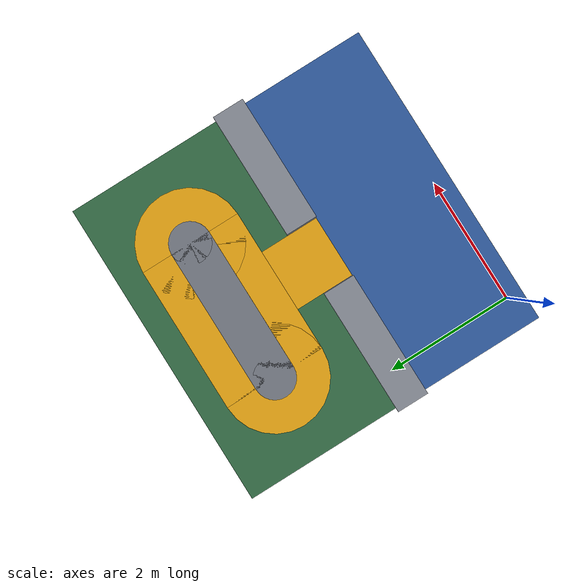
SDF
<?xml version="1.0"?>
<sdf version="1.8">
  <!-- Generated by scripts/generate_competition_field.py; do not edit. -->
  <model name="competition_field">
    <static>true</static>
    <link name="field">
      <visual name="zone_a_surface">
        <pose>2 0.75 0.002 0 0 0</pose>
        <geometry>
          <box>
            <size>5 2 0.004</size>
          </box>
        </geometry>
        <material>
          <ambient>0.2 0.38 0.66 1</ambient>
          <diffuse>0.2 0.38 0.66 1</diffuse>
        </material>
      </visual>
      <visual name="zone_b_surface">
        <pose>2 2 0.002 0 0 0</pose>
        <geometry>
          <box>
            <size>5 0.5 0.004</size>
          </box>
        </geometry>
        <material>
          <ambient>0.37 0.39 0.43 1</ambient>
          <diffuse>0.37 0.39 0.43 1</diffuse>
        </material>
      </visual>
      <visual name="zone_c_surface">
        <pose>2 3.5 0.002 0 0 0</pose>
        <geometry>
          <box>
            <size>5 2.5 0.004</size>
          </box>
        </geometry>
        <material>
          <ambient>0.22 0.45 0.29 1</ambient>
          <diffuse>0.22 0.45 0.29 1</diffuse>
        </material>
      </visual>
      <visual name="b_corridor_surface">
        <pose>2 2.225 0.006 0 0 0</pose>
        <geometry>
          <box>
            <size>1 0.95 0.004</size>
          </box>
        </geometry>
        <material>
          <ambient>0.95 0.68 0.08 1</ambient>
          <diffuse>0.95 0.68 0.08 1</diffuse>
        </material>
      </visual>
      <visual name="c_ring_outer_center">
        <pose>2 3.525 0.006 0 0 0</pose>
        <geometry>
          <box>
            <size>2.35 1.65 0.004</size>
          </box>
        </geometry>
        <material>
          <ambient>0.95 0.68 0.08 1</ambient>
          <diffuse>0.95 0.68 0.08 1</diffuse>
        </material>
      </visual>
      <visual name="c_ring_outer_west_cap">
        <pose>0.825 3.525 0.006 0 0 0</pose>
        <geometry>
          <cylinder>
            <radius>0.825</radius>
            <length>0.004</length>
          </cylinder>
        </geometry>
        <material>
          <ambient>0.95 0.68 0.08 1</ambient>
          <diffuse>0.95 0.68 0.08 1</diffuse>
        </material>
      </visual>
      <visual name="c_ring_outer_east_cap">
        <pose>3.175 3.525 0.006 0 0 0</pose>
        <geometry>
          <cylinder>
            <radius>0.825</radius>
            <length>0.004</length>
          </cylinder>
        </geometry>
        <material>
          <ambient>0.95 0.68 0.08 1</ambient>
          <diffuse>0.95 0.68 0.08 1</diffuse>
        </material>
      </visual>
      <visual name="diagnosis_room_inner_center">
        <pose>2 3.525 0.01 0 0 0</pose>
        <geometry>
          <box>
            <size>2.35 0.65 0.004</size>
          </box>
        </geometry>
        <material>
          <ambient>0.48 0.5 0.54 1</ambient>
          <diffuse>0.48 0.5 0.54 1</diffuse>
        </material>
      </visual>
      <visual name="diagnosis_room_inner_west_cap">
        <pose>0.825 3.525 0.01 0 0 0</pose>
        <geometry>
          <cylinder>
            <radius>0.325</radius>
            <length>0.004</length>
          </cylinder>
        </geometry>
        <material>
          <ambient>0.48 0.5 0.54 1</ambient>
          <diffuse>0.48 0.5 0.54 1</diffuse>
        </material>
      </visual>
      <visual name="diagnosis_room_inner_east_cap">
        <pose>3.175 3.525 0.01 0 0 0</pose>
        <geometry>
          <cylinder>
            <radius>0.325</radius>
            <length>0.004</length>
          </cylinder>
        </geometry>
        <material>
          <ambient>0.48 0.5 0.54 1</ambient>
          <diffuse>0.48 0.5 0.54 1</diffuse>
        </material>
      </visual>
      <visual name="b_wall_west">
        <pose>0.5 2 0.15 0 0 0</pose>
        <geometry>
          <box>
            <size>2 0.5 0.3</size>
          </box>
        </geometry>
        <material>
          <ambient>0.56 0.58 0.62 1</ambient>
          <diffuse>0.56 0.58 0.62 1</diffuse>
        </material>
      </visual>
      <collision name="b_wall_west_collision">
        <pose>0.5 2 0.15 0 0 0</pose>
        <geometry>
          <box>
            <size>2 0.5 0.3</size>
          </box>
        </geometry>
      </collision>
      <visual name="b_wall_east">
        <pose>3.5 2 0.15 0 0 0</pose>
        <geometry>
          <box>
            <size>2 0.5 0.3</size>
          </box>
        </geometry>
        <material>
          <ambient>0.56 0.58 0.62 1</ambient>
          <diffuse>0.56 0.58 0.62 1</diffuse>
        </material>
      </visual>
      <collision name="b_wall_east_collision">
        <pose>3.5 2 0.15 0 0 0</pose>
        <geometry>
          <box>
            <size>2 0.5 0.3</size>
          </box>
        </geometry>
      </collision>
    </link>
  </model>
</sdf>
